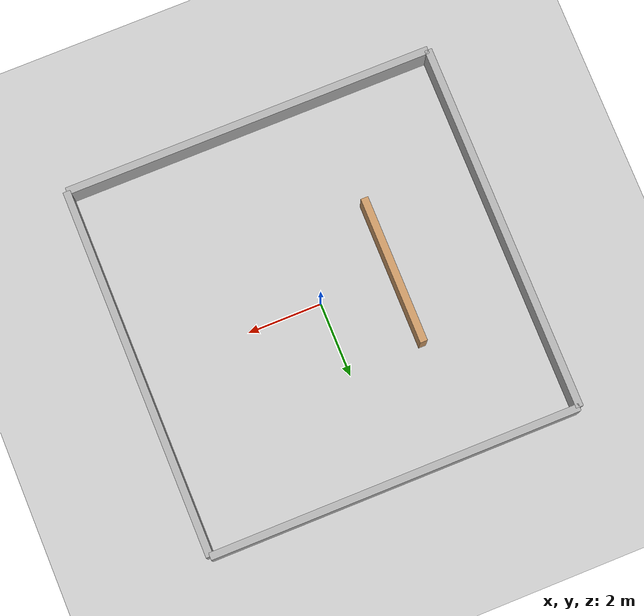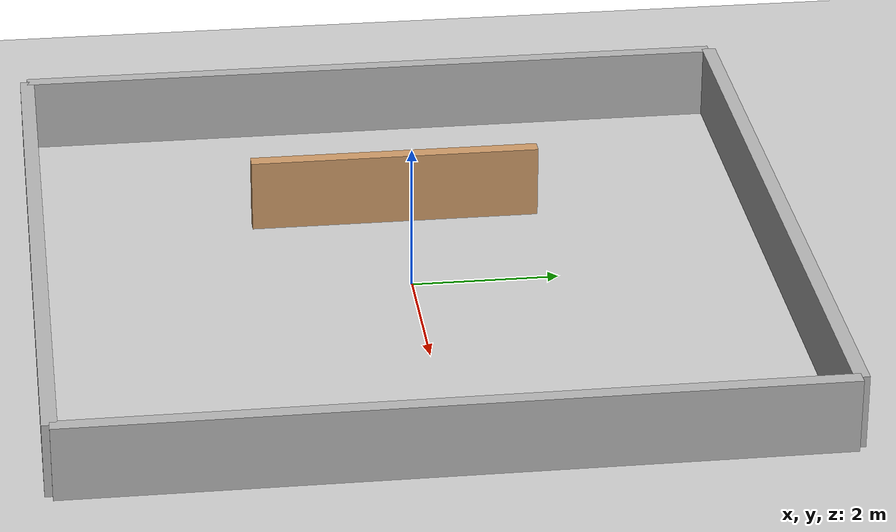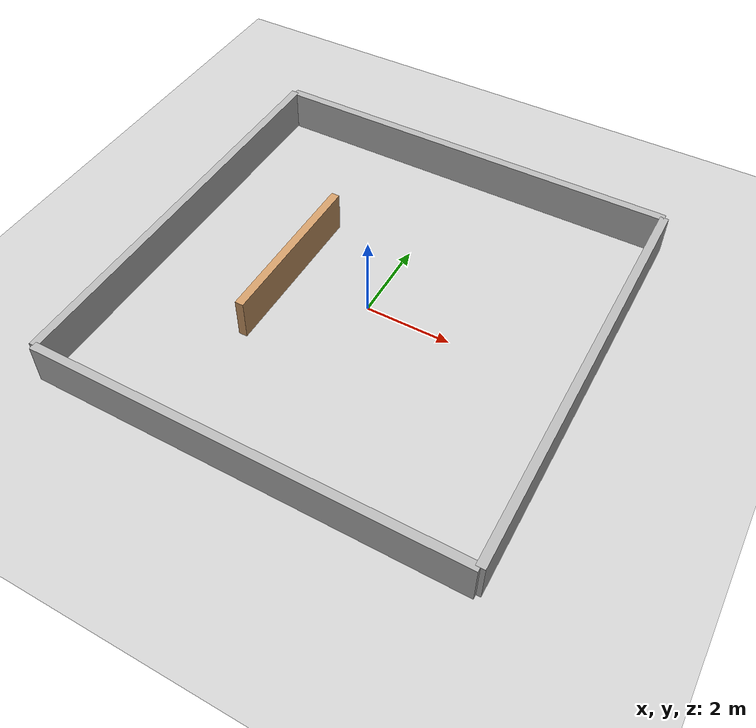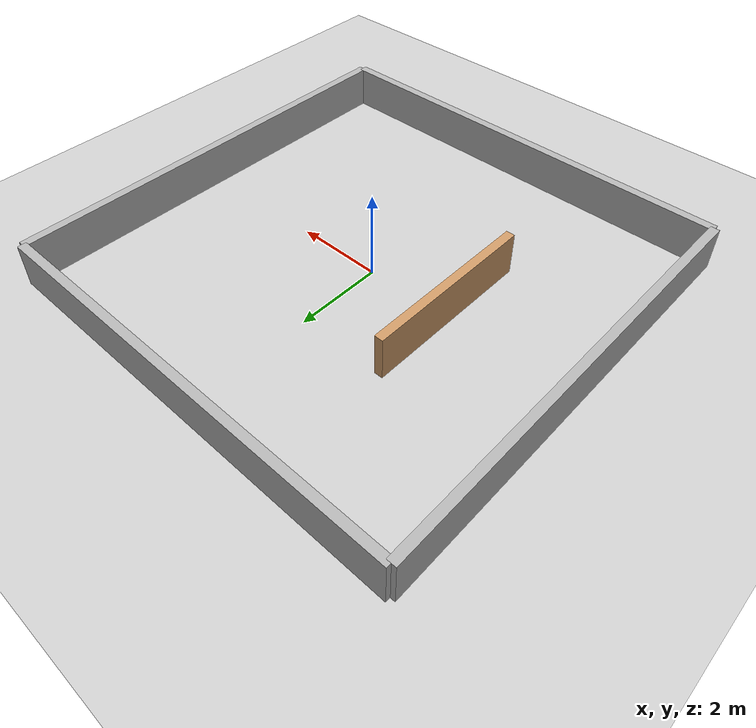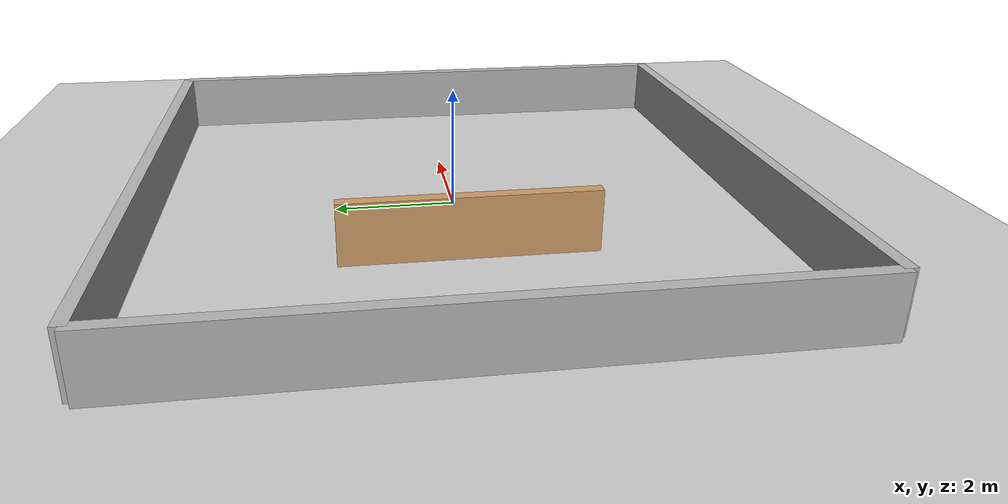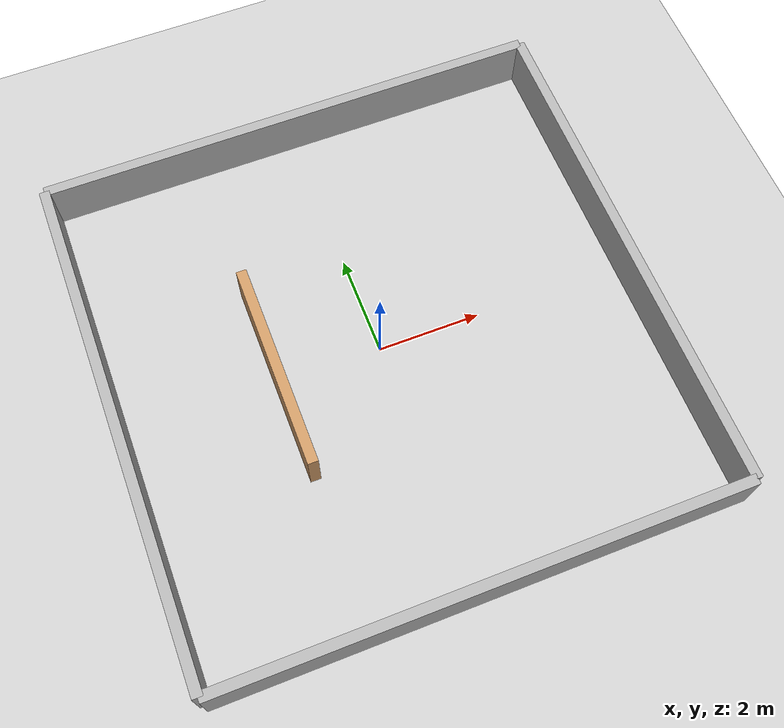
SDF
<?xml version="1.0"?>
<sdf version="1.6">
  <world name="construction_incomplete">

    <!-- Physics -->
    <physics type="ode">
      <real_time_update_rate>1000.0</real_time_update_rate>
      <max_step_size>0.001</max_step_size>
      <real_time_factor>1</real_time_factor>
    </physics>

    <!-- Light -->
    <include>
      <uri>model://sun</uri>
    </include>

    <!-- Ground Plane -->
    <include>
      <uri>model://ground_plane</uri>
    </include>

    <!-- Construction Site Outer Walls (Complete) -->
    <!-- Wall 1: North wall -->
    <model name="wall_north">
      <static>true</static>
      <pose>0 5 0.5 0 0 0</pose>
      <link name="link">
        <collision name="collision">
          <geometry>
            <box>
              <size>10 0.2 1</size>
            </box>
          </geometry>
        </collision>
        <visual name="visual">
          <geometry>
            <box>
              <size>10 0.2 1</size>
            </box>
          </geometry>
          <material>
            <ambient>0.7 0.7 0.7 1</ambient>
            <diffuse>0.7 0.7 0.7 1</diffuse>
          </material>
        </visual>
      </link>
    </model>

    <!-- Wall 2: South wall -->
    <model name="wall_south">
      <static>true</static>
      <pose>0 -5 0.5 0 0 0</pose>
      <link name="link">
        <collision name="collision">
          <geometry>
            <box>
              <size>10 0.2 1</size>
            </box>
          </geometry>
        </collision>
        <visual name="visual">
          <geometry>
            <box>
              <size>10 0.2 1</size>
            </box>
          </geometry>
          <material>
            <ambient>0.7 0.7 0.7 1</ambient>
            <diffuse>0.7 0.7 0.7 1</diffuse>
          </material>
        </visual>
      </link>
    </model>

    <!-- Wall 3: East wall -->
    <model name="wall_east">
      <static>true</static>
      <pose>5 0 0.5 0 0 0</pose>
      <link name="link">
        <collision name="collision">
          <geometry>
            <box>
              <size>0.2 10 1</size>
            </box>
          </geometry>
        </collision>
        <visual name="visual">
          <geometry>
            <box>
              <size>0.2 10 1</size>
            </box>
          </geometry>
          <material>
            <ambient>0.7 0.7 0.7 1</ambient>
            <diffuse>0.7 0.7 0.7 1</diffuse>
          </material>
        </visual>
      </link>
    </model>

    <!-- Wall 4: West wall -->
    <model name="wall_west">
      <static>true</static>
      <pose>-5 0 0.5 0 0 0</pose>
      <link name="link">
        <collision name="collision">
          <geometry>
            <box>
              <size>0.2 10 1</size>
            </box>
          </geometry>
        </collision>
        <visual name="visual">
          <geometry>
            <box>
              <size>0.2 10 1</size>
            </box>
          </geometry>
          <material>
            <ambient>0.7 0.7 0.7 1</ambient>
            <diffuse>0.7 0.7 0.7 1</diffuse>
          </material>
        </visual>
      </link>
    </model>

    <!-- Inner Room 1 walls (INCOMPLETE - Only 1 wall built) -->
    <model name="room1_wall1">
      <static>true</static>
      <pose>-2 0 0.5 0 0 0</pose>
      <link name="link">
        <collision name="collision">
          <geometry>
            <box>
              <size>0.2 4 1</size>
            </box>
          </geometry>
        </collision>
        <visual name="visual">
          <geometry>
            <box>
              <size>0.2 4 1</size>
            </box>
          </geometry>
          <material>
            <ambient>0.8 0.6 0.4 1</ambient>
            <diffuse>0.8 0.6 0.4 1</diffuse>
          </material>
        </visual>
      </link>
    </model>

    <!-- NOTE: room1_wall2 is MISSING - under construction! -->

    <!-- Inner Room 2 walls (INCOMPLETE - No walls built yet) -->
    <!-- NOTE: Both room2 walls are MISSING - not started yet! -->

  </world>
</sdf>
